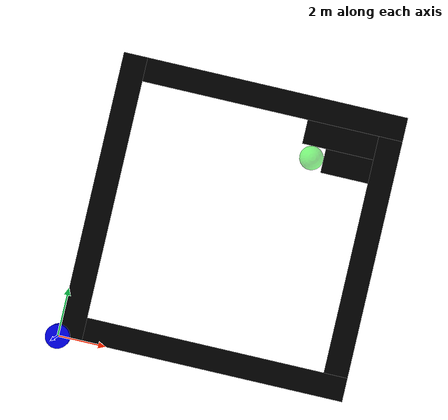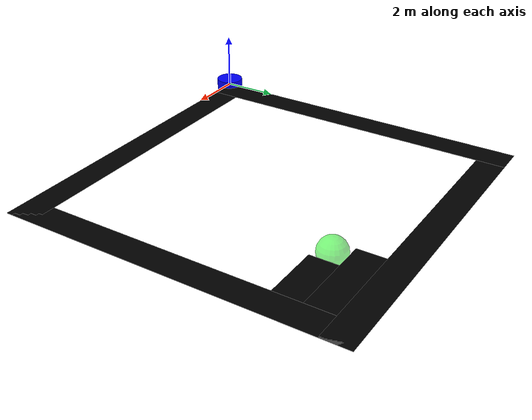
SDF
<?xml version='1.0'?>
<sdf version='1.6'>
  <world name='plane_environment'>
    <model name='GoalArea'>
      <pose frame=''>8.5 9.5 0 0 -0 0</pose>
      <static>1</static>
      <link name='GoalAreaLink'>
        <visual name='GoalArea_visual'>
          <pose frame=''>0 0 0 0 -0 0</pose>
          <geometry>
            <sphere>
              <radius>0.5</radius>
            </sphere>
          </geometry>
          <material>
            <script>
              <uri>file://media/materials/scripts/gazebo.material</uri>
              <name>Gazebo/Grey</name>
            </script>
            <ambient>0 1 0 0.5</ambient>
          </material>
        </visual>
        <self_collide>0</self_collide>
        <kinematic>0</kinematic>
      </link>
    </model>
    <gravity>0 0 -9.8</gravity>
    <magnetic_field>6e-06 2.3e-05 -4.2e-05</magnetic_field>
    <atmosphere type='adiabatic'/>
    <physics name='default_physics' default='0' type='ode'>
      <max_step_size>0.05</max_step_size>
      <real_time_factor>1</real_time_factor>
      <real_time_update_rate>1000</real_time_update_rate>
    </physics>
    <scene>
      <ambient>0.4 0.4 0.4 1</ambient>
      <background>0.7 0.7 0.7 1</background>
      <shadows>1</shadows>
    </scene>

  <model name="PushboxRobot">
   <pose frame=''>0 0 0 0 0 0</pose>
   <static>1</static>
   <link name="PushboxRobotLink">
     <visual name="visual">
        <geometry>
          <cylinder>
            <radius>0.5</radius>
            <length>0.5</length>
          </cylinder>
        </geometry>
        <material>
          <ambient>0 0 1 1.0</ambient>
        </material>
      </visual>
      <collision name="collision">
        <geometry>
          <cylinder>
            <radius>0.5</radius>
            <length>0.5</length>
          </cylinder>
        </geometry>
      </collision>
    </link>
  </model>

  <model name="PushboxOpponent">
   <pose frame=''>0 0 0 0 0 0</pose>
   <static>1</static>
   <link name="PushboxOpponentLink">
     <visual name="visual">
        <geometry>
          <cylinder>
            <radius>0.5</radius>
            <length>0.5</length>
          </cylinder>
        </geometry>
        <material>
          <ambient>1 0 0 1.0</ambient>
        </material>
      </visual>
      <collision name="collision">
        <geometry>
          <cylinder>
            <radius>0.5</radius>
            <length>0.5</length>
          </cylinder>
        </geometry>
      </collision>
    </link>
  </model>

  <model name="obstacleWest">
      <pose frame=''>0.5 6.0 0.0 0 0 0</pose>
      <static>1</static>
      <link name="link">
      <visual name="visual">
        <geometry>
          <box>
            <size>1.0 12.0 0.005</size>
          </box>
        </geometry>
        <material>
            <ambient>0 0 0 1.0</ambient>
          </material>
      </visual>
    </link>
  </model>
  <model name="obstacleSouth">
      <pose frame=''>6.0 0.5 0.0 0 0 0</pose>
      <static>1</static>
      <link name="link">
      <visual name="visual">
        <geometry>
          <box>
            <size>12.0 1.0 0.005</size>
          </box>
        </geometry>
        <material>
            <ambient>0 0 0 1.0</ambient>
          </material>
      </visual>
    </link>
  </model>
  <model name="obstacleNorth">
      <pose frame=''>6.0 11.5 0.0 0 0 0</pose>
      <static>1</static>
      <link name="link">
      <visual name="visual">
        <geometry>
          <box>
            <size>12.0 1.0 0.005</size>
          </box>
        </geometry>
        <material>
            <ambient>0 0 0 1.0</ambient>
          </material>
      </visual>
    </link>
  </model>

  <model name="obstacleEast">
      <pose frame=''>11.5 6.0 0.0 0 0 0</pose>
      <static>1</static>
      <link name="link">
      <visual name="visual">
        <geometry>
          <box>
            <size>1.0 12.0 0.005</size>
          </box>
        </geometry>
        <material>
            <ambient>0 0 0 1.0</ambient>
          </material>
      </visual>
    </link>
  </model>

  <model name="obstacleBlock1">
      <pose frame=''>9.5 10.5 0.0 0 0 0</pose>
      <static>1</static>
      <link name="link">
      <visual name="visual">
        <geometry>
          <box>
            <size>3.0 1.0 0.005</size>
          </box>
        </geometry>
        <material>
            <ambient>0 0 0 1.0</ambient>
          </material>
      </visual>
    </link>
  </model>

  <model name="obstacleBlock2">
      <pose frame=''>10.0 9.5 0.0 0 0 0</pose>
      <static>1</static>
      <link name="link">
      <visual name="visual">
        <geometry>
          <box>
            <size>2.0 1.0 0.005</size>
          </box>
        </geometry>
        <material>
            <ambient>0 0 0 1.0</ambient>
          </material>
      </visual>
    </link>
  </model>

<light name='user_point_light_0' type='point'>
      <pose frame=''>-1.75276 -1.33719 1 0 -0 0</pose>
      <diffuse>0.5 0.5 0.5 1</diffuse>
      <specular>0.1 0.1 0.1 1</specular>
      <attenuation>
        <range>20</range>
        <constant>0.5</constant>
        <linear>0.01</linear>
        <quadratic>0.001</quadratic>
      </attenuation>
      <cast_shadows>0</cast_shadows>
      <direction>0 0 -1</direction>
    </light>
</world>
</sdf>
